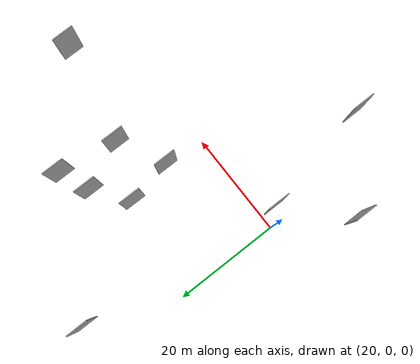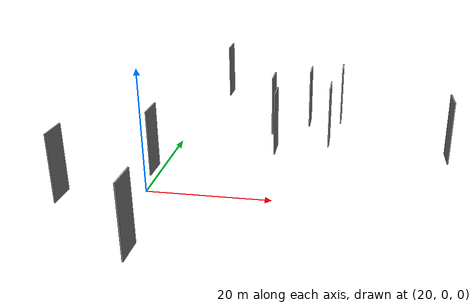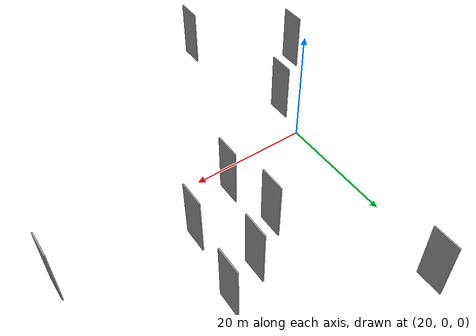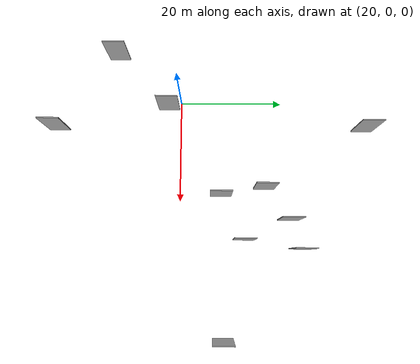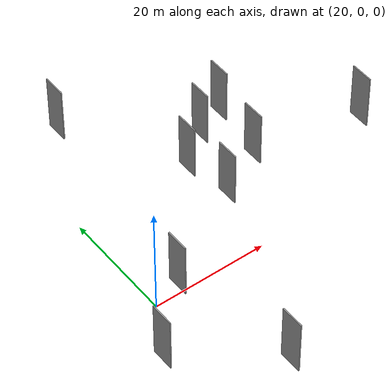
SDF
<sdf version="1.6">
 <world name="default">
  <scene>
   <sky><clouds><speed>12</speed></clouds></sky>
   <ambient>0.4 0.4 0.4 1</ambient>
   <background>0.7 0.7 0.7 1</background>
   <shadows>1</shadows>
  </scene>
  <gravity>0 0 -9.8066</gravity>
  <magnetic_field>6e-06 2.3e-05 -4.2e-05</magnetic_field>
  <physics default="0" name="default_physics" type="ode">
   <ode>
    <solver>
     <type>quick</type>
     <iters>10</iters>
     <sor>1.0</sor>
     <use_dynamic_moi_rescaling>0</use_dynamic_moi_rescaling>
    </solver>
    <constraints>
     <cfm>0</cfm>
     <erp>0.2</erp>
     <contact_max_correcting_vel>100</contact_max_correcting_vel>
     <contact_surface_layer>0.001</contact_surface_layer>
    </constraints>
   </ode>
   <max_step_size>0.004</max_step_size>
   <real_time_factor>1</real_time_factor>
   <real_time_update_rate>250</real_time_update_rate>
  </physics>
  <light name="sun" type="directional">
   <pose>0 0 10 0 0 0</pose>
   <diffuse>0.8 0.8 0.8 1</diffuse>
   <specular>0.2 0.2 0.2 1</specular>
   <attenuation>
    <range>1000</range>
    <constant>0.9</constant>
    <linear>0.01</linear>
    <quadratic>0.001</quadratic>
   </attenuation>
   <direction>-0.5 0.1 -0.9</direction>
  </light>
  <model name="grey_wall_1">
   <static>1</static>
   <pose>37.9321 16.1545 5.0 0.000000 0.000000 1.570796</pose>
   <link name="link">
    <pose>0 0 5.00 0 0 0</pose>
    <collision name="collision"><geometry><box><size>4.00 0.2 10.00</size></box></geometry></collision>
    <visual name="visual">
     <cast_shadows>0</cast_shadows>
     <geometry><box><size>4.00 0.2 10.00</size></box></geometry>
     <material>
      <script>
       <uri>model://grey_wall/materials/scripts</uri>
       <uri>model://grey_wall/materials/textures</uri>
       <name>vrc/grey_wall</name>
      </script>
     </material>
    </visual>
   </link>
  </model>
  <model name="grey_wall_2">
   <static>1</static>
   <pose>49.3171 22.9917 5.0 0.000000 0.000000 1.570796</pose>
   <link name="link">
    <pose>0 0 5.00 0 0 0</pose>
    <collision name="collision"><geometry><box><size>4.00 0.2 10.00</size></box></geometry></collision>
    <visual name="visual">
     <cast_shadows>0</cast_shadows>
     <geometry><box><size>4.00 0.2 10.00</size></box></geometry>
     <material>
      <script>
       <uri>model://grey_wall/materials/scripts</uri>
       <uri>model://grey_wall/materials/textures</uri>
       <name>vrc/grey_wall</name>
      </script>
     </material>
    </visual>
   </link>
  </model>
  <model name="grey_wall_3">
   <static>1</static>
   <pose>26.6873 -23.2090 5.0 0.000000 0.000000 1.570796</pose>
   <link name="link">
    <pose>0 0 5.00 0 0 0</pose>
    <collision name="collision"><geometry><box><size>4.00 0.2 10.00</size></box></geometry></collision>
    <visual name="visual">
     <cast_shadows>0</cast_shadows>
     <geometry><box><size>4.00 0.2 10.00</size></box></geometry>
     <material>
      <script>
       <uri>model://grey_wall/materials/scripts</uri>
       <uri>model://grey_wall/materials/textures</uri>
       <name>vrc/grey_wall</name>
      </script>
     </material>
    </visual>
   </link>
  </model>
  <model name="grey_wall_4">
   <static>1</static>
   <pose>47.7120 12.2924 5.0 0.000000 0.000000 1.570796</pose>
   <link name="link">
    <pose>0 0 5.00 0 0 0</pose>
    <collision name="collision"><geometry><box><size>4.00 0.2 10.00</size></box></geometry></collision>
    <visual name="visual">
     <cast_shadows>0</cast_shadows>
     <geometry><box><size>4.00 0.2 10.00</size></box></geometry>
     <material>
      <script>
       <uri>model://grey_wall/materials/scripts</uri>
       <uri>model://grey_wall/materials/textures</uri>
       <name>vrc/grey_wall</name>
      </script>
     </material>
    </visual>
   </link>
  </model>
  <model name="grey_wall_5">
   <static>1</static>
   <pose>66.1970 8.5514 5.0 0.000000 0.000000 1.570796</pose>
   <link name="link">
    <pose>0 0 5.00 0 0 0</pose>
    <collision name="collision"><geometry><box><size>4.00 0.2 10.00</size></box></geometry></collision>
    <visual name="visual">
     <cast_shadows>0</cast_shadows>
     <geometry><box><size>4.00 0.2 10.00</size></box></geometry>
     <material>
      <script>
       <uri>model://grey_wall/materials/scripts</uri>
       <uri>model://grey_wall/materials/textures</uri>
       <name>vrc/grey_wall</name>
      </script>
     </material>
    </visual>
   </link>
  </model>
  <model name="grey_wall_6">
   <static>1</static>
   <pose>39.4085 7.9904 5.0 0.000000 0.000000 1.570796</pose>
   <link name="link">
    <pose>0 0 5.00 0 0 0</pose>
    <collision name="collision"><geometry><box><size>4.00 0.2 10.00</size></box></geometry></collision>
    <visual name="visual">
     <cast_shadows>0</cast_shadows>
     <geometry><box><size>4.00 0.2 10.00</size></box></geometry>
     <material>
      <script>
       <uri>model://grey_wall/materials/scripts</uri>
       <uri>model://grey_wall/materials/textures</uri>
       <name>vrc/grey_wall</name>
      </script>
     </material>
    </visual>
   </link>
  </model>
  <model name="grey_wall_7">
   <static>1</static>
   <pose>22.4978 -2.0943 5.0 0.000000 0.000000 1.570796</pose>
   <link name="link">
    <pose>0 0 5.00 0 0 0</pose>
    <collision name="collision"><geometry><box><size>4.00 0.2 10.00</size></box></geometry></collision>
    <visual name="visual">
     <cast_shadows>0</cast_shadows>
     <geometry><box><size>4.00 0.2 10.00</size></box></geometry>
     <material>
      <script>
       <uri>model://grey_wall/materials/scripts</uri>
       <uri>model://grey_wall/materials/textures</uri>
       <name>vrc/grey_wall</name>
      </script>
     </material>
    </visual>
   </link>
  </model>
  <model name="grey_wall_8">
   <static>1</static>
   <pose>43.8863 20.7636 5.0 0.000000 0.000000 1.570796</pose>
   <link name="link">
    <pose>0 0 5.00 0 0 0</pose>
    <collision name="collision"><geometry><box><size>4.00 0.2 10.00</size></box></geometry></collision>
    <visual name="visual">
     <cast_shadows>0</cast_shadows>
     <geometry><box><size>4.00 0.2 10.00</size></box></geometry>
     <material>
      <script>
       <uri>model://grey_wall/materials/scripts</uri>
       <uri>model://grey_wall/materials/textures</uri>
       <name>vrc/grey_wall</name>
      </script>
     </material>
    </visual>
   </link>
  </model>
  <model name="grey_wall_9">
   <static>1</static>
   <pose>26.4855 35.0726 5.0 0.000000 0.000000 1.570796</pose>
   <link name="link">
    <pose>0 0 5.00 0 0 0</pose>
    <collision name="collision"><geometry><box><size>4.00 0.2 10.00</size></box></geometry></collision>
    <visual name="visual">
     <cast_shadows>0</cast_shadows>
     <geometry><box><size>4.00 0.2 10.00</size></box></geometry>
     <material>
      <script>
       <uri>model://grey_wall/materials/scripts</uri>
       <uri>model://grey_wall/materials/textures</uri>
       <name>vrc/grey_wall</name>
      </script>
     </material>
    </visual>
   </link>
  </model>
  <model name="grey_wall_10">
   <static>1</static>
   <pose>12.5439 -11.8689 5.0 0.000000 0.000000 1.570796</pose>
   <link name="link">
    <pose>0 0 5.00 0 0 0</pose>
    <collision name="collision"><geometry><box><size>4.00 0.2 10.00</size></box></geometry></collision>
    <visual name="visual">
     <cast_shadows>0</cast_shadows>
     <geometry><box><size>4.00 0.2 10.00</size></box></geometry>
     <material>
      <script>
       <uri>model://grey_wall/materials/scripts</uri>
       <uri>model://grey_wall/materials/textures</uri>
       <name>vrc/grey_wall</name>
      </script>
     </material>
    </visual>
   </link>
  </model>
 </world>
</sdf>
